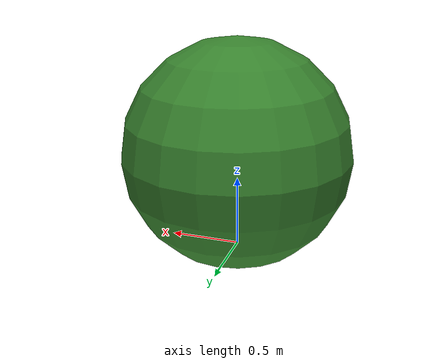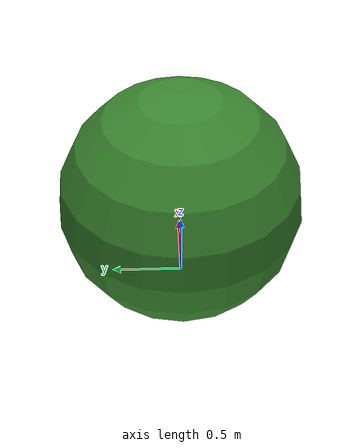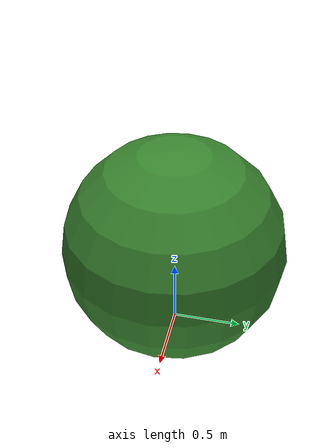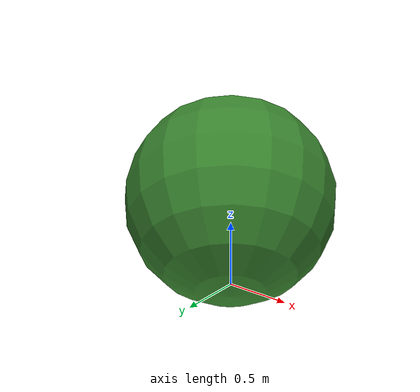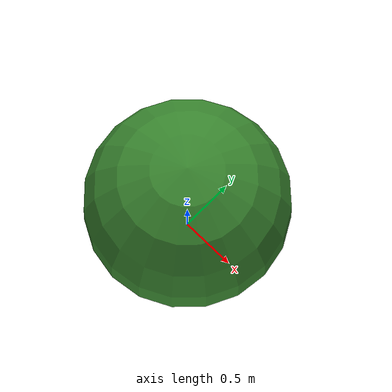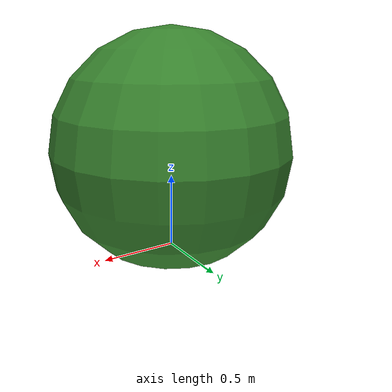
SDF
<?xml version="1.0" ?>
<sdf version="1.9">
  <model name="veg_bush">
    <static>true</static>
    <link name="link">
      <visual name="body">
        <geometry><sphere><radius>0.8</radius></sphere></geometry>
        <pose>0 0 0.7 0 0 0</pose>
        <material>
          <ambient>0.18 0.42 0.14 1</ambient>
          <diffuse>0.22 0.52 0.18 1</diffuse>
        </material>
      </visual>
    </link>
  </model>
</sdf>
